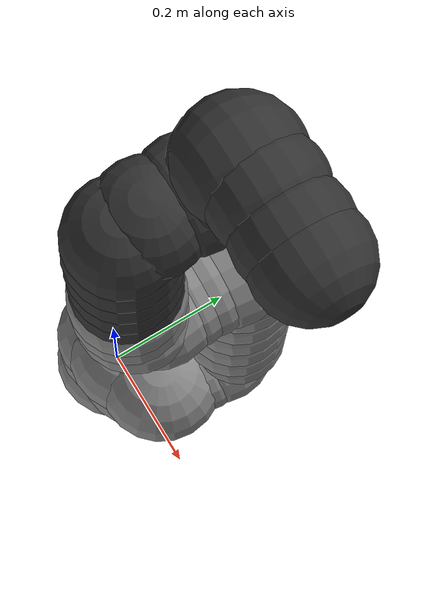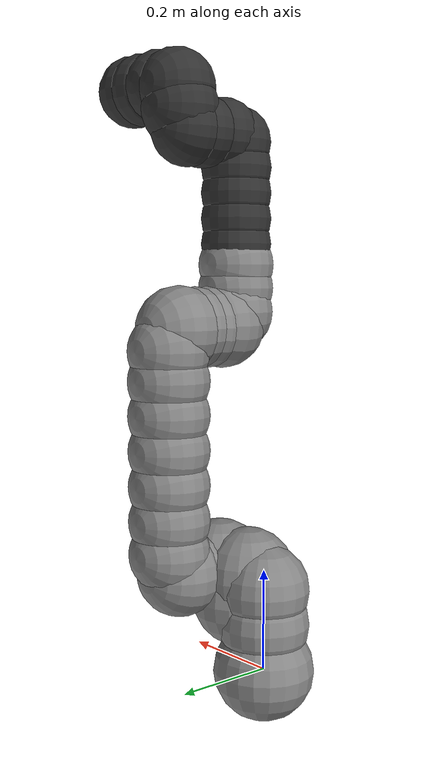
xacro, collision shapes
<?xml version="1.0" encoding="UTF-8" ?>
<robot name="link6" xmlns:xacro="http://ros.org/wiki/xacro">
    <!-- Arguments -->
    <xacro:arg name="gripper" default="" />

    <xacro:include filename="$(find link6_description)/urdf/link6_calibrated.xacro" />

    <xacro:include filename="$(find link6_description)/urdf/kortex3.ros2control.xacro" />

    <xacro:load_robot gripper="$(arg gripper)"/>

</robot>

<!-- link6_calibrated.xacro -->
<robot name="link6_calibrated_old" xmlns:xacro="http://ros.org/wiki/xacro">
<xacro:macro name="load_robot" params="gripper">

    <material name="lightgray">
        <color rgba="0.5294117647058824 0.5294117647058824 0.5294117647058824 1"/>
    </material>
    <material name="darkgray">
        <color rgba="0.19607843137254902 0.19607843137254902 0.19607843137254902 1"/>
    </material>
    <material name="kinovablue">
        <color rgba="0.0 0.0784313725490196 0.5372549019607843 1"/>
    </material>
    <link name="base_link">
        <inertial>
            <origin xyz="-0.00721418 -0.00010978 0.03709101" rpy="0 0 0"/>
            <mass value="1.86878181"/>
            <inertia ixx="0.00333792" ixy="3.22E-06" ixz="0.00024559" iyy="0.0046469" iyz="3.88E-06" izz="0.00539116"/>
        </inertial>
        <visual>
            <origin xyz="0 0 0" rpy="0 0 0"/>
            <geometry>
                <mesh filename="package://link6_description/meshes/base_link.STL"/>
            </geometry>
            <material name="lightgray"/>
        </visual>
        <collision>
            <origin xyz="0.0 0.0 0.0" rpy="0 0 0"/>
            <geometry>
                <sphere radius="0.1"/>
            </geometry>
        </collision>
    </link>
    <link name="shoulder_link">
        <inertial>
            <origin xyz="0.03930119 -0.00705889 -0.08462154" rpy="0 0 0"/>
            <mass value="4.8256987"/>
            <inertia ixx="0.0192746" ixy="-0.00239802" ixz="-0.00896331" iyy="0.03087806" iyz="0.0016298" izz="0.02134949"/>
        </inertial>
        <visual>
            <origin xyz="0 0 0" rpy="0 0 0"/>
            <geometry>
                <mesh filename="package://link6_description/meshes/shoulder_link.STL"/>
            </geometry>
            <material name="lightgray"/>
        </visual>
        <collision>
            <origin xyz="0.0 0.0 -0.04" rpy="0 0 0"/>
            <geometry>
                <sphere radius="0.09"/>
            </geometry>
        </collision>
        <collision>
            <origin xyz="0.06065737 -0.01 -0.08144986" rpy="0 0 0"/>
            <geometry>
                <sphere radius="0.095"/>
            </geometry>
        </collision>
        <collision>
            <origin xyz="0.0 0.0 -0.11" rpy="0 0 0"/>
            <geometry>
                <sphere radius="0.09"/>
            </geometry>
        </collision>
        <collision>
            <origin xyz="0.1078564 -0.02138667 -0.1392602" rpy="0 0 0"/>
            <geometry>
                <sphere radius="0.095"/>
            </geometry>
        </collision>
        <collision>
            <origin xyz="0.04343076 -0.003456797 -0.1306261" rpy="0 0 0"/>
            <geometry>
                <sphere radius="0.095"/>
            </geometry>
        </collision>
    </link>
    <joint name="joint_1" type="revolute">
        <origin xyz="0 0 0.053" rpy="3.141592653589793 0 0"/>
        <parent link="base_link"/>
        <child link="shoulder_link"/>
        <axis xyz="0 0 1"/>
        <limit lower="-6.283185307179586" upper="6.283185307179586" effort="210" velocity="3.141592653589793"/>
    </joint>
    <link name="arm_link">
        <inertial>
            <origin xyz="2.53E-06 0.18829586 -0.03988382" rpy="0 0 0"/>
            <mass value="5.98601487"/>
            <inertia ixx="0.25899206" ixy="-2.89E-05" ixz="-1.23E-06" iyy="0.01755445" iyz="-0.02128064" izz="0.25291674"/>
        </inertial>
        <visual>
            <origin xyz="0 0 0" rpy="0 0 0"/>
            <geometry>
                <mesh filename="package://link6_description/meshes/arm_link.STL"/>
            </geometry>
            <material name="lightgray"/>
        </visual>
        <collision>
            <origin xyz="0.0 0.0 -0.01524985" rpy="0 0 0"/>
            <geometry>
                <sphere radius="0.08"/>
            </geometry>
        </collision>
        <collision>
            <origin xyz="0.0 0.003107564 -0.05411892" rpy="0 0 0"/>
            <geometry>
                <sphere radius="0.085"/>
            </geometry>
        </collision>
        <collision>
            <origin xyz="0.0 0.04674223 -0.07957917" rpy="0 0 0"/>
            <geometry>
                <sphere radius="0.08"/>
            </geometry>
        </collision>
        <collision>
            <origin xyz="0.0 0.1114492 -0.07957917" rpy="0 0 0"/>
            <geometry>
                <sphere radius="0.08"/>
            </geometry>
        </collision>
        <collision>
            <origin xyz="0.0 0.179992 -0.07957917" rpy="0 0 0"/>
            <geometry>
                <sphere radius="0.08"/>
            </geometry>
        </collision>
        <collision>
            <origin xyz="0.0 0.2487042 -0.07957917" rpy="0 0 0"/>
            <geometry>
                <sphere radius="0.08"/>
            </geometry>
        </collision>
        <collision>
            <origin xyz="0.0 0.3173259 -0.07957917" rpy="0 0 0"/>
            <geometry>
                <sphere radius="0.08"/>
            </geometry>
        </collision>
        <collision>
            <origin xyz="0.0 0.3835145 -0.07957917" rpy="0 0 0"/>
            <geometry>
                <sphere radius="0.08"/>
            </geometry>
        </collision>
        <collision>
            <origin xyz="0.0 0.4415521 -0.07957917" rpy="0 0 0"/>
            <geometry>
                <sphere radius="0.08"/>
            </geometry>
        </collision>
        <collision>
            <origin xyz="0.0 0.4824647 -0.05411892" rpy="0 0 0"/>
            <geometry>
                <sphere radius="0.085"/>
            </geometry>
        </collision>
        <collision>
            <origin xyz="0.0 0.4848319 -0.01524985" rpy="0 0 0"/>
            <geometry>
                <sphere radius="0.08"/>
            </geometry>
        </collision>
        <collision>
            <origin xyz="0.0 0.003107564 -0.05411892" rpy="0 0 0"/>
            <geometry>
                <sphere radius="0.085"/>
            </geometry>
        </collision>
    </link>
    <joint name="joint_2" type="revolute">
        <origin xyz="0.11024 -0.069257 -0.1375" rpy="-1.5707963267948966 0 0"/>
        <parent link="shoulder_link"/>
        <child link="arm_link"/>
        <axis xyz="0 0 1"/>
        <limit lower="-6.283185307179586" upper="6.283185307179586" effort="210" velocity="3.141592653589793"/>
    </joint>
    <link name="forearm_link">
        <inertial>
            <origin xyz="4.64E-06 -0.02451414 -0.02997969" rpy="0 0 0"/>
            <mass value="3.41588342"/>
            <inertia ixx="0.01742043" ixy="-3.55E-06" ixz="8.4E-07" iyy="0.01119175" iyz="0.00518163" izz="0.01212876"/>
        </inertial>
        <visual>
            <origin xyz="0 0 0" rpy="0 0 0"/>
            <geometry>
                <mesh filename="package://link6_description/meshes/forearm_link.STL"/>
            </geometry>
            <material name="lightgray"/>
        </visual>
        <collision>
            <origin xyz="0.0 0.0 -0.01478543" rpy="0 0 0"/>
            <geometry>
                <sphere radius="0.08"/>
            </geometry>
        </collision>
        <collision>
            <origin xyz="0.0 -0.002774531 -0.05402248" rpy="0 0 0"/>
            <geometry>
                <sphere radius="0.085"/>
            </geometry>
        </collision>
        <collision>
            <origin xyz="0.0 -0.02792384 -0.08310601" rpy="0 0 0"/>
            <geometry>
                <sphere radius="0.08"/>
            </geometry>
        </collision>
        <collision>
            <origin xyz="0.0 -0.07494865 -0.09085903" rpy="0 0 0"/>
            <geometry>
                <sphere radius="0.075"/>
            </geometry>
        </collision>
        <collision>
            <origin xyz="0.0 -0.1212274 -0.091767" rpy="0 0 0"/>
            <geometry>
                <sphere radius="0.075"/>
            </geometry>
        </collision>
    </link>
    <joint name="joint_3" type="revolute">
        <origin xyz="0 0.485 0" rpy="-3.141592653589793 0 0"/>
        <parent link="arm_link"/>
        <child link="forearm_link"/>
        <axis xyz="0 0 1"/>
        <limit lower="-6.283185307179586" upper="6.283185307179586" effort="210" velocity="3.141592653589793"/>
    </joint>
    <link name="lower_wrist_link">
        <inertial>
            <origin xyz="-0.00010793 -0.01056422 -0.08091102" rpy="0 0 0"/>
            <mass value="2.08494922"/>
            <inertia ixx="0.02454276" ixy="2.61E-06" ixz="1.799E-05" iyy="0.02385702" iyz="0.00315758" izz="0.00294903"/>
        </inertial>
        <visual>
            <origin xyz="0 0 0" rpy="0 0 0"/>
            <geometry>
                <mesh filename="package://link6_description/meshes/lower_wrist_link.STL"/>
            </geometry>
            <material name="darkgray"/>
        </visual>
        <collision>
            <origin xyz="0.0 0.0 -0.01025881" rpy="0 0 0"/>
            <geometry>
                <sphere radius="0.07"/>
            </geometry>
        </collision>
        <collision>
            <origin xyz="0.0 0.0 -0.06014508" rpy="0 0 0"/>
            <geometry>
                <sphere radius="0.07"/>
            </geometry>
        </collision>
        <collision>
            <origin xyz="0.0 0.0 -0.1106502" rpy="0 0 0"/>
            <geometry>
                <sphere radius="0.07"/>
            </geometry>
        </collision>
        <collision>
            <origin xyz="0.0 0.0 -0.1607216" rpy="0 0 0"/>
            <geometry>
                <sphere radius="0.07"/>
            </geometry>
        </collision>
        <collision>
            <origin xyz="0.0 -0.001607588 -0.2100781" rpy="0 0 0"/>
            <geometry>
                <sphere radius="0.07"/>
            </geometry>
        </collision>
        <collision>
            <origin xyz="0.0 -0.03559661 -0.222183" rpy="0 0 0"/>
            <geometry>
                <sphere radius="0.07"/>
            </geometry>
        </collision>
    </link>
    <joint name="joint_4" type="revolute">
        <origin xyz="0 -0.15216 -0.091704" rpy="-1.5707963267948966 0 0"/>
        <parent link="forearm_link"/>
        <child link="lower_wrist_link"/>
        <axis xyz="0 0 1"/>
        <limit lower="-6.283185307179586" upper="6.283185307179586" effort="100" velocity="6.283185307179586"/>
    </joint>
    <link name="upper_wrist_link">
        <inertial>
            <origin xyz="0.01243595 0.03284165 -0.04091434" rpy="0 0 0"/>
            <mass value="2.0075751"/>
            <inertia ixx="0.00734684" ixy="0.00124927" ixz="-0.00090156" iyy="0.00464684" iyz="-0.00236128" izz="0.00589508"/>
        </inertial>
        <visual>
            <origin xyz="0 0 0" rpy="0 0 0"/>
            <geometry>
                <mesh filename="package://link6_description/meshes/upper_wrist_link.STL"/>
            </geometry>
            <material name="darkgray"/>
        </visual>
        <collision>
            <origin xyz="0.0 0.0 -0.02579783" rpy="0 0 0"/>
            <geometry>
                <sphere radius="0.07"/>
            </geometry>
        </collision>
        <collision>
            <origin xyz="0.0 0.0 -0.06192018" rpy="0 0 0"/>
            <geometry>
                <sphere radius="0.07"/>
            </geometry>
        </collision>
        <collision>
            <origin xyz="0.00760242 0.03851649 -0.07210818" rpy="0 0 0"/>
            <geometry>
                <sphere radius="0.075"/>
            </geometry>
        </collision>
        <collision>
            <origin xyz="0.01731829 0.07948508 -0.07309098" rpy="0 0 0"/>
            <geometry>
                <sphere radius="0.075"/>
            </geometry>
        </collision>
        <collision>
            <origin xyz="0.06120646 0.0860149 -0.07708402" rpy="0 0 0"/>
            <geometry>
                <sphere radius="0.07"/>
            </geometry>
        </collision>
    </link>
    <joint name="joint_5" type="revolute">
        <origin xyz="0 -0.062957 -0.22275" rpy="-1.5707963267948966 0 0"/>
        <parent link="lower_wrist_link"/>
        <child link="upper_wrist_link"/>
        <axis xyz="0 0 1"/>
        <limit lower="-6.283185307179586" upper="6.283185307179586" effort="100" velocity="6.283185307179586"/>
    </joint>
    <link name="wrist_interface_link">
        <inertial>
            <origin xyz="0 0.00050624 -0.00388589" rpy="0 0 0"/>
            <mass value="1.51926049"/>
            <inertia ixx="0.00390762" ixy="-1.13E-06" ixz="1.16E-06" iyy="0.00390722" iyz="-2.21E-05" izz="0.0013928"/>
        </inertial>
        <visual>
            <origin xyz="0 0 0" rpy="0 0 0"/>
            <geometry>
                <mesh filename="package://link6_description/meshes/wrist_interface_link.STL"/>
            </geometry>
            <material name="darkgray"/>
        </visual>
        <collision>
            <origin xyz="0.0 0.0 -0.02647703" rpy="0 0 0"/>
            <geometry>
                <sphere radius="0.07"/>
            </geometry>
        </collision>
        <collision>
            <origin xyz="0.0 0.0 -0.06063214" rpy="0 0 0"/>
            <geometry>
                <sphere radius="0.07"/>
            </geometry>
        </collision>
    </link>
    <joint name="joint_6" type="revolute">
        <origin xyz="0.087028 0.086 -0.076922" rpy="0 -1.5707963267948966 0"/>
        <parent link="upper_wrist_link"/>
        <child link="wrist_interface_link"/>
        <axis xyz="0 0 1"/>
        <limit lower="-6.283185307179586" upper="6.283185307179586" effort="100" velocity="6.283185307179586"/>
    </joint>
    <link name="end_effector_link">
        <inertial>
            <origin xyz="0 0 0" rpy="0 0 0"/>
            <mass value="0"/>
            <inertia ixx="0" ixy="0" ixz="0" iyy="0" iyz="0" izz="0"/>
        </inertial>
    </link>
    <joint name="end_effector" type="fixed">
        <origin xyz="0 0 -0.092" rpy="3.141592653589793 0 0"/>
        <parent link="wrist_interface_link"/>
        <child link="end_effector_link"/>
        <axis xyz="0 0 0"/>
        <limit lower="0" upper="0" effort="0" velocity="0"/>
    </joint>

    <!-- If no gripper, define tool frame here -->
    <xacro:if value="${not gripper}">
      <link name="tool_frame"/>
      <joint name="tool_frame_joint" type="fixed">
        <origin xyz="0 0 0" rpy="0 0 0" />
        <parent link="end_effector_link" />
        <child link="tool_frame" />
        <axis xyz="0 0 0" />
      </joint>
    </xacro:if>
    <!-- Include and load the gripper if defined -->
    <xacro:unless value="${not gripper}">
        <xacro:include filename="$(find robotiq_description)/urdf/robotiq_2f_85_macro.urdf.xacro" />
        <xacro:robotiq_gripper
            name="RobotiqGripperHardwareInterface"
            prefix=""
            parent="end_effector_link"
            include_ros2_control="false"
            com_port="/dev/ttyUSB0"
            use_fake_hardware="false"
            fake_sensor_commands="false"
            sim_ignition="false"
            sim_isaac="false"
            isaac_joint_commands="/isaac_joint_commands"
            isaac_joint_states="/isaac_joint_states">
            <origin xyz="0 0 0" rpy="0 0 0" />
        </xacro:robotiq_gripper>
    </xacro:unless>

    </xacro:macro>
</robot>
